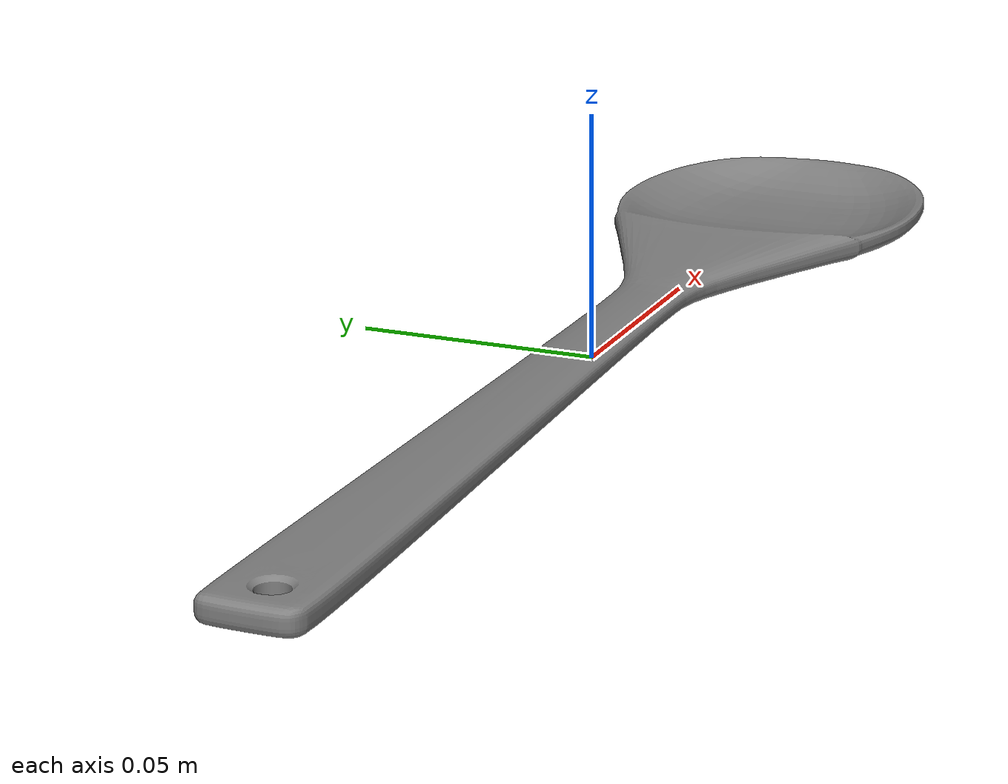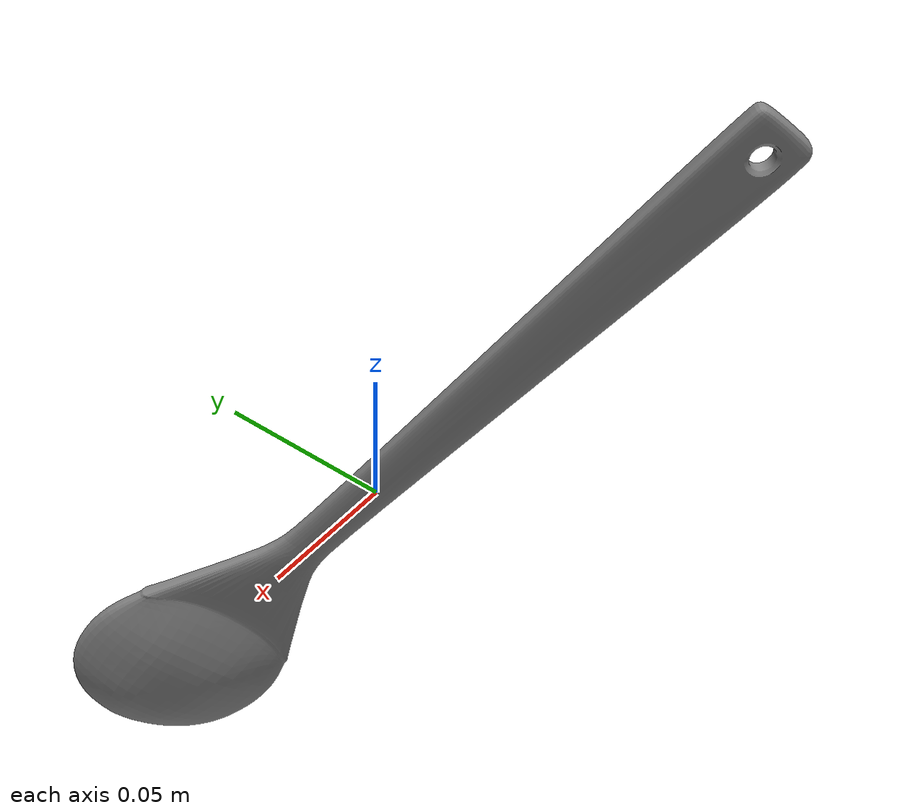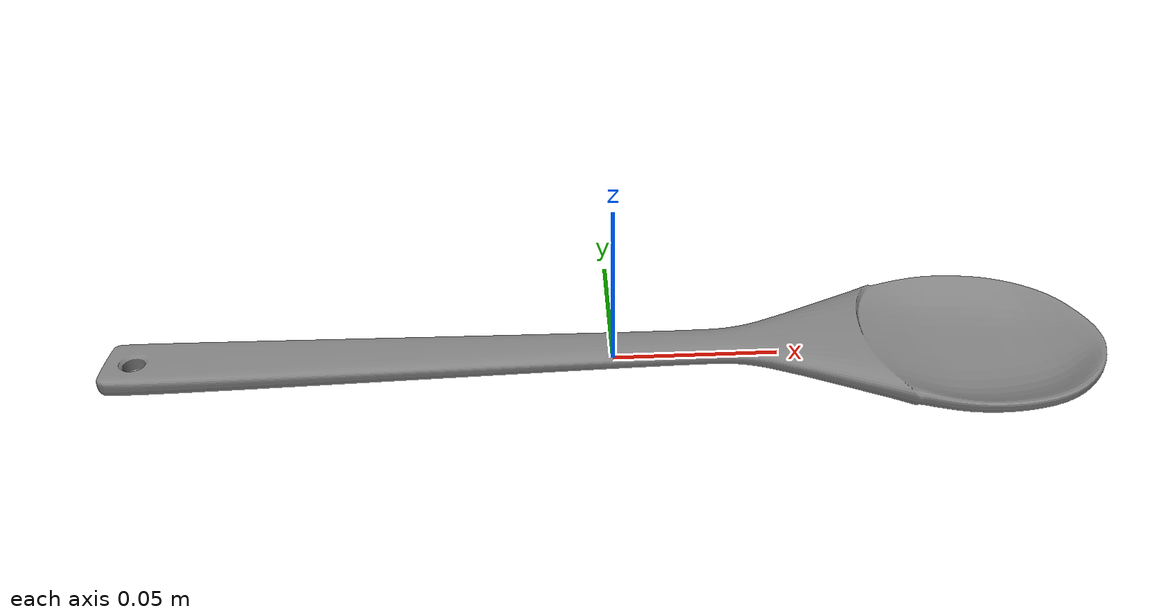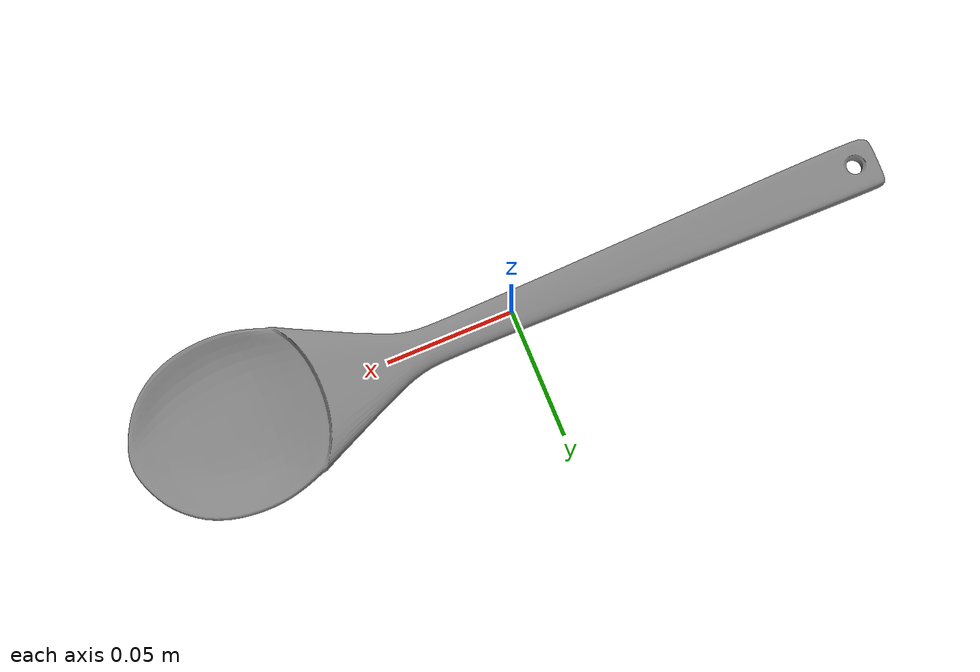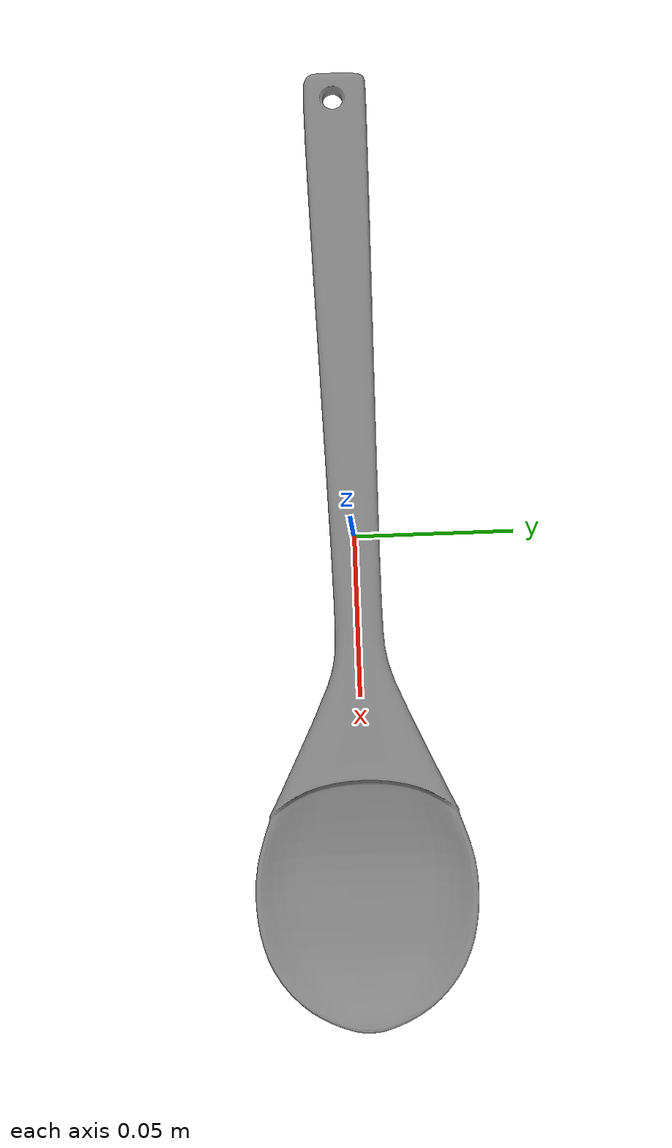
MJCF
<mujoco model="wooden_spoon_1">
    <compiler angle="radian" meshdir="../meshes/" texturedir="../textures/" autolimits="true" inertiafromgeom="false"/>
    <asset>
        <mesh name="WoodenSpoon1" file="obj/WoodenSpoon1.obj" />
        <mesh name="UCX_WoodenSpoon1_001" file="stl/UCX_WoodenSpoon1_001.stl" />
		<mesh name="UCX_WoodenSpoon1_002" file="stl/UCX_WoodenSpoon1_002.stl" />
		<mesh name="UCX_WoodenSpoon1_003" file="stl/UCX_WoodenSpoon1_003.stl" />
		<mesh name="UCX_WoodenSpoon1_004" file="stl/UCX_WoodenSpoon1_004.stl" />
		<mesh name="UCX_WoodenSpoon1_005" file="stl/UCX_WoodenSpoon1_005.stl" />
		<mesh name="UCX_WoodenSpoon1_006" file="stl/UCX_WoodenSpoon1_006.stl" />
		<mesh name="UCX_WoodenSpoon1_007" file="stl/UCX_WoodenSpoon1_007.stl" />
		<mesh name="UCX_WoodenSpoon1_008" file="stl/UCX_WoodenSpoon1_008.stl" />
		<mesh name="UCX_WoodenSpoon1_009" file="stl/UCX_WoodenSpoon1_009.stl" />
		<mesh name="UCX_WoodenSpoon1_010" file="stl/UCX_WoodenSpoon1_010.stl" />
		<mesh name="UCX_WoodenSpoon1_011" file="stl/UCX_WoodenSpoon1_011.stl" />
		<mesh name="UCX_WoodenSpoon1_012" file="stl/UCX_WoodenSpoon1_012.stl" />
		<mesh name="UCX_WoodenSpoon1_013" file="stl/UCX_WoodenSpoon1_013.stl" />
		<mesh name="UCX_WoodenSpoon1_014" file="stl/UCX_WoodenSpoon1_014.stl" />
		<mesh name="UCX_WoodenSpoon1_015" file="stl/UCX_WoodenSpoon1_015.stl" />
		<mesh name="UCX_WoodenSpoon1_016" file="stl/UCX_WoodenSpoon1_016.stl" />
		<mesh name="UCX_WoodenSpoon1_017" file="stl/UCX_WoodenSpoon1_017.stl" />
		<mesh name="UCX_WoodenSpoon1_018" file="stl/UCX_WoodenSpoon1_018.stl" />
		<mesh name="UCX_WoodenSpoon1_019" file="stl/UCX_WoodenSpoon1_019.stl" />
		<mesh name="UCX_WoodenSpoon1_020" file="stl/UCX_WoodenSpoon1_020.stl" />
		<mesh name="UCX_WoodenSpoon1_021" file="stl/UCX_WoodenSpoon1_021.stl" />
		<mesh name="UCX_WoodenSpoon1_022" file="stl/UCX_WoodenSpoon1_022.stl" />
		<mesh name="UCX_WoodenSpoon1_023" file="stl/UCX_WoodenSpoon1_023.stl" />
		<mesh name="UCX_WoodenSpoon1_024" file="stl/UCX_WoodenSpoon1_024.stl" />
		<mesh name="UCX_WoodenSpoon1_025" file="stl/UCX_WoodenSpoon1_025.stl" />
		<mesh name="UCX_WoodenSpoon1_026" file="stl/UCX_WoodenSpoon1_026.stl" />
		<mesh name="UCX_WoodenSpoon1_027" file="stl/UCX_WoodenSpoon1_027.stl" />
    </asset>
    <default>
        <default class="wooden_spoon_1_visual">
            <geom contype="0" conaffinity="0" />
        </default>
        <default class="wooden_spoon_1_collision">
            <geom rgba="0.9 0.9 0.9 0.0" />
        </default>
    </default>
    <worldbody>
        <body name="wooden_spoon_1">
            <freejoint />
            <inertial mass="0.04259909689426422" pos="0.038045745342969894 -9.914828115142882e-05 0.0008913751225918531" quat="-0.00027299474459141493 0.9999933242797852 0.0007471946883015335 -0.003565532620996237" diaginertia="6.861970177851617e-06 0.000454949215054512 0.0004610825562849641"/>
            <geom name="WoodenSpoon1" pos="0.0 0.0 0.0" quat="1.0 0.0 0.0 0.0" type="mesh" mesh="WoodenSpoon1" class="wooden_spoon_1_visual" />
            <geom name="UCX_WoodenSpoon1_001" type="mesh" pos="0.0 0.0 0.0" quat="1.0 0.0 0.0 0.0" mesh="UCX_WoodenSpoon1_001" class="wooden_spoon_1_collision"/>
            <geom name="UCX_WoodenSpoon1_002" type="mesh" pos="0.0 0.0 0.0" quat="1.0 0.0 0.0 0.0" mesh="UCX_WoodenSpoon1_002" class="wooden_spoon_1_collision"/>
            <geom name="UCX_WoodenSpoon1_003" type="mesh" pos="0.0 0.0 0.0" quat="1.0 0.0 0.0 0.0" mesh="UCX_WoodenSpoon1_003" class="wooden_spoon_1_collision"/>
            <geom name="UCX_WoodenSpoon1_004" type="mesh" pos="0.0 0.0 0.0" quat="1.0 0.0 0.0 0.0" mesh="UCX_WoodenSpoon1_004" class="wooden_spoon_1_collision"/>
            <geom name="UCX_WoodenSpoon1_005" type="mesh" pos="0.0 0.0 0.0" quat="1.0 0.0 0.0 0.0" mesh="UCX_WoodenSpoon1_005" class="wooden_spoon_1_collision"/>
            <geom name="UCX_WoodenSpoon1_006" type="mesh" pos="0.0 0.0 0.0" quat="1.0 0.0 0.0 0.0" mesh="UCX_WoodenSpoon1_006" class="wooden_spoon_1_collision"/>
            <geom name="UCX_WoodenSpoon1_007" type="mesh" pos="0.0 0.0 0.0" quat="1.0 0.0 0.0 0.0" mesh="UCX_WoodenSpoon1_007" class="wooden_spoon_1_collision"/>
            <geom name="UCX_WoodenSpoon1_008" type="mesh" pos="0.0 0.0 0.0" quat="1.0 0.0 0.0 0.0" mesh="UCX_WoodenSpoon1_008" class="wooden_spoon_1_collision"/>
            <geom name="UCX_WoodenSpoon1_009" type="mesh" pos="0.0 0.0 0.0" quat="1.0 0.0 0.0 0.0" mesh="UCX_WoodenSpoon1_009" class="wooden_spoon_1_collision"/>
            <geom name="UCX_WoodenSpoon1_010" type="mesh" pos="0.0 0.0 0.0" quat="1.0 0.0 0.0 0.0" mesh="UCX_WoodenSpoon1_010" class="wooden_spoon_1_collision"/>
            <geom name="UCX_WoodenSpoon1_011" type="mesh" pos="0.0 0.0 0.0" quat="1.0 0.0 0.0 0.0" mesh="UCX_WoodenSpoon1_011" class="wooden_spoon_1_collision"/>
            <geom name="UCX_WoodenSpoon1_012" type="mesh" pos="0.0 0.0 0.0" quat="1.0 0.0 0.0 0.0" mesh="UCX_WoodenSpoon1_012" class="wooden_spoon_1_collision"/>
            <geom name="UCX_WoodenSpoon1_013" type="mesh" pos="0.0 0.0 0.0" quat="1.0 0.0 0.0 0.0" mesh="UCX_WoodenSpoon1_013" class="wooden_spoon_1_collision"/>
            <geom name="UCX_WoodenSpoon1_014" type="mesh" pos="0.0 0.0 0.0" quat="1.0 0.0 0.0 0.0" mesh="UCX_WoodenSpoon1_014" class="wooden_spoon_1_collision"/>
            <geom name="UCX_WoodenSpoon1_015" type="mesh" pos="0.0 0.0 0.0" quat="1.0 0.0 0.0 0.0" mesh="UCX_WoodenSpoon1_015" class="wooden_spoon_1_collision"/>
            <geom name="UCX_WoodenSpoon1_016" type="mesh" pos="0.0 0.0 0.0" quat="1.0 0.0 0.0 0.0" mesh="UCX_WoodenSpoon1_016" class="wooden_spoon_1_collision"/>
            <geom name="UCX_WoodenSpoon1_017" type="mesh" pos="0.0 0.0 0.0" quat="1.0 0.0 0.0 0.0" mesh="UCX_WoodenSpoon1_017" class="wooden_spoon_1_collision"/>
            <geom name="UCX_WoodenSpoon1_018" type="mesh" pos="0.0 0.0 0.0" quat="1.0 0.0 0.0 0.0" mesh="UCX_WoodenSpoon1_018" class="wooden_spoon_1_collision"/>
            <geom name="UCX_WoodenSpoon1_019" type="mesh" pos="0.0 0.0 0.0" quat="1.0 0.0 0.0 0.0" mesh="UCX_WoodenSpoon1_019" class="wooden_spoon_1_collision"/>
            <geom name="UCX_WoodenSpoon1_020" type="mesh" pos="0.0 0.0 0.0" quat="1.0 0.0 0.0 0.0" mesh="UCX_WoodenSpoon1_020" class="wooden_spoon_1_collision"/>
            <geom name="UCX_WoodenSpoon1_021" type="mesh" pos="0.0 0.0 0.0" quat="1.0 0.0 0.0 0.0" mesh="UCX_WoodenSpoon1_021" class="wooden_spoon_1_collision"/>
            <geom name="UCX_WoodenSpoon1_022" type="mesh" pos="0.0 0.0 0.0" quat="1.0 0.0 0.0 0.0" mesh="UCX_WoodenSpoon1_022" class="wooden_spoon_1_collision"/>
            <geom name="UCX_WoodenSpoon1_023" type="mesh" pos="0.0 0.0 0.0" quat="1.0 0.0 0.0 0.0" mesh="UCX_WoodenSpoon1_023" class="wooden_spoon_1_collision"/>
            <geom name="UCX_WoodenSpoon1_024" type="mesh" pos="0.0 0.0 0.0" quat="1.0 0.0 0.0 0.0" mesh="UCX_WoodenSpoon1_024" class="wooden_spoon_1_collision"/>
            <geom name="UCX_WoodenSpoon1_025" type="mesh" pos="0.0 0.0 0.0" quat="1.0 0.0 0.0 0.0" mesh="UCX_WoodenSpoon1_025" class="wooden_spoon_1_collision"/>
            <geom name="UCX_WoodenSpoon1_026" type="mesh" pos="0.0 0.0 0.0" quat="1.0 0.0 0.0 0.0" mesh="UCX_WoodenSpoon1_026" class="wooden_spoon_1_collision"/>
            <geom name="UCX_WoodenSpoon1_027" type="mesh" pos="0.0 0.0 0.0" quat="1.0 0.0 0.0 0.0" mesh="UCX_WoodenSpoon1_027" class="wooden_spoon_1_collision"/>
        </body>
    </worldbody>
    <equality />
    <contact />
</mujoco>
